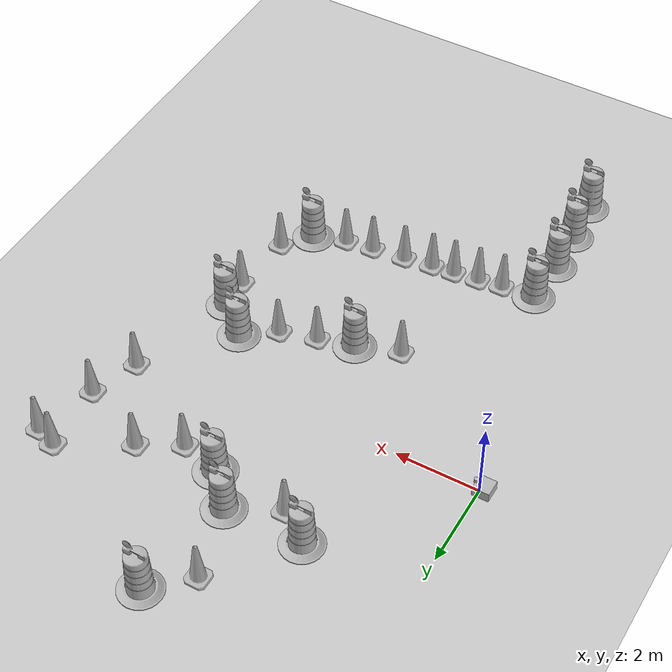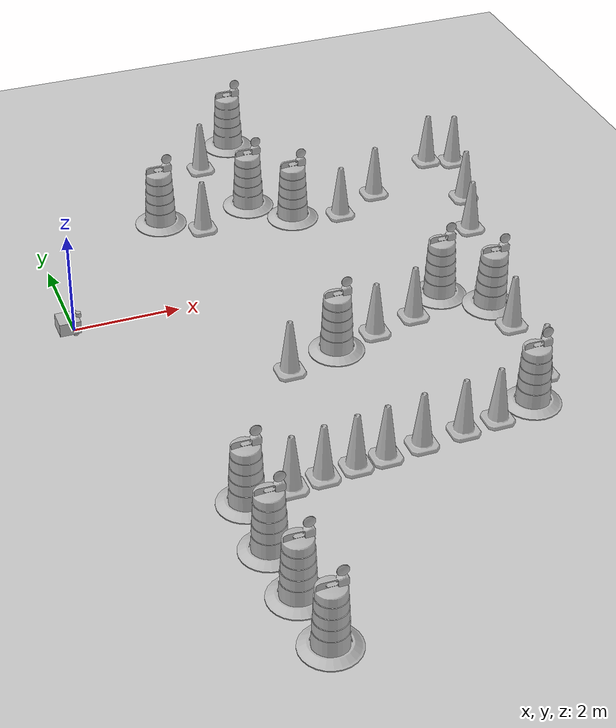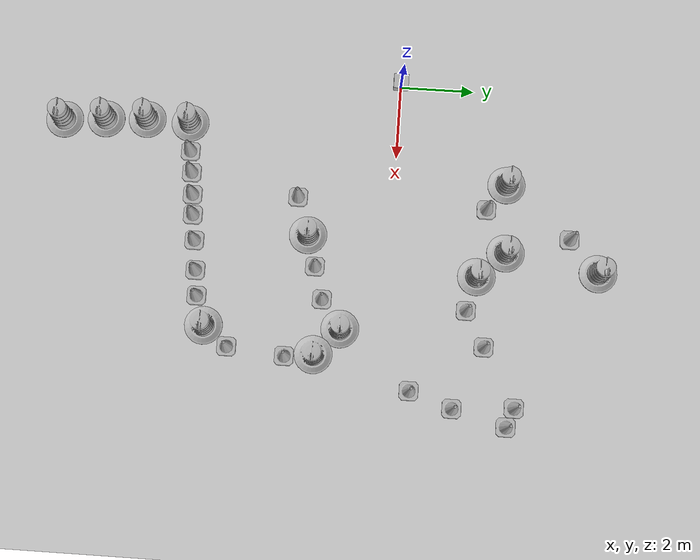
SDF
<sdf version="1.7">
 <world name="default">
  <light name="sun" type="directional">
   <pose>0 0 10 0 -0 0</pose>
   <diffuse>0.8 0.8 0.8 1</diffuse>
   <specular>0.2 0.2 0.2 1</specular>
   <attenuation>
    <range>1000</range>
    <constant>0.9</constant>
    <linear>0.01</linear>
    <quadratic>0.001</quadratic>
   </attenuation>
   <direction>-0.5 0.1 -0.9</direction>
   <spot><inner_angle>0</inner_angle><outer_angle>0</outer_angle><falloff>0</falloff></spot>
  </light>
  <model name="ground_plane">
   <static>1</static>
   <link name="link">
    <collision name="collision">
     <geometry><plane><normal>0 0 1</normal><size>100 100</size></plane></geometry>
     <surface>
      <contact><collide_bitmask>65535</collide_bitmask></contact>
      <friction><ode><mu>100</mu><mu2>50</mu2></ode></friction>
     </surface>
    </collision>
    <visual name="visual">
     <cast_shadows>0</cast_shadows>
     <geometry><plane><normal>0 0 1</normal><size>100 100</size></plane></geometry>
     <material>
      <script><uri>file://media/materials/scripts/gazebo.material</uri><name>Gazebo/Grey</name></script>
     </material>
    </visual>
   </link>
  </model>
  <gravity>0 0 -9.8</gravity>
  <magnetic_field>6e-06 2.3e-05 -4.2e-05</magnetic_field>
  <atmosphere type="adiabatic"/>
  <physics type="ode">
   <max_step_size>0.001</max_step_size>
   <real_time_factor>1</real_time_factor>
   <real_time_update_rate>1000</real_time_update_rate>
  </physics>
  <scene><ambient>0.4 0.4 0.4 1</ambient><background>0.7 0.7 0.7 1</background><shadows>1</shadows></scene>
  <audio><device>default</device></audio>
  <spherical_coordinates>
   <surface_model>EARTH_WGS84</surface_model>
   <latitude_deg>0</latitude_deg>
   <longitude_deg>0</longitude_deg>
   <elevation>0</elevation>
   <heading_deg>0</heading_deg>
  </spherical_coordinates>
  <model name="my_bot">
   <link name="base_link">
    <inertial>
     <pose>-0.078571 0 0.127857 0 -0 0</pose>
     <mass>1.4</mass>
     <inertia>
      <ixx>0.0263519</ixx>
      <ixy>0</ixy>
      <ixz>-0.00696429</ixz>
      <iyy>0.034209</iyy>
      <iyz>0</iyz>
      <izz>0.0349738</izz>
     </inertia>
    </inertial>
    <collision name="base_link_fixed_joint_lump__chassis_collision">
     <pose>-0.1 0 0.125 0 -0 0</pose>
     <geometry><box><size>0.4 0.4 0.25</size></box></geometry>
    </collision>
    <collision name="base_link_fixed_joint_lump__caster_wheel_collision_1">
     <pose>-0.15 0 0 0 -0 0</pose>
     <geometry><sphere><radius>0.05</radius></sphere></geometry>
     <surface><friction><ode><mu>0.001</mu><mu2>0.001</mu2></ode></friction></surface>
    </collision>
    <collision name="base_link_fixed_joint_lump__laser_link_collision_2">
     <pose>0.1 0 0.27 0 -0 0</pose>
     <geometry><cylinder><length>0.1</length><radius>0.05</radius></cylinder></geometry>
    </collision>
    <visual name="base_link_fixed_joint_lump__chassis_visual">
     <pose>-0.1 0 0.125 0 -0 0</pose>
     <geometry><box><size>0.4 0.4 0.25</size></box></geometry>
     <material>
      <script><name>ambient</name><uri>file://media/materials/scripts/gazebo.material</uri></script>
     </material>
    </visual>
    <visual name="base_link_fixed_joint_lump__camera_link_visual_1">
     <pose>-0.1 0 0.04 0 -0 0</pose>
     <geometry><box><size>0.05 0.1 0.1</size></box></geometry>
     <material>
      <script><name>Gazebo/Red</name><uri>file://media/materials/scripts/gazebo.material</uri></script>
     </material>
    </visual>
    <visual name="base_link_fixed_joint_lump__caster_wheel_visual_2">
     <pose>-0.15 0 0 0 -0 0</pose>
     <geometry><sphere><radius>0.05</radius></sphere></geometry>
     <material>
      <script><name>ambient</name><uri>file://media/materials/scripts/gazebo.material</uri></script>
     </material>
    </visual>
    <visual name="base_link_fixed_joint_lump__laser_link_visual_3">
     <pose>0.1 0 0.27 0 -0 0</pose>
     <geometry><cylinder><length>0.1</length><radius>0.05</radius></cylinder></geometry>
    </visual>
    <sensor name="camera" type="camera">
     <visualize>1</visualize>
     <update_rate>10</update_rate>
     <camera>
      <horizontal_fov>1.047</horizontal_fov>
      <image><width>640</width><height>480</height><format>R8G8B8</format></image>
      <clip><near>0.1</near><far>100</far></clip>
     </camera>
     <plugin name="camera_controller" filename="libgazebo_ros_camera.so">
      <frame_name>camera_link_optical</frame_name>
     </plugin>
     <pose>-0.1 0 0.04 0 -0 0</pose>
    </sensor>
    <sensor name="laser" type="ray">
     <visualize>0</visualize>
     <update_rate>10</update_rate>
     <ray>
      <scan>
       <horizontal>
        <samples>360</samples>
        <resolution>1</resolution>
        <min_angle>-3.14</min_angle>
        <max_angle>3.14</max_angle>
       </horizontal>
       <vertical><samples>1</samples><min_angle>0</min_angle><max_angle>0</max_angle></vertical>
      </scan>
      <range><min>0.3</min><max>12</max><resolution>0.01</resolution></range>
     </ray>
     <plugin name="laser_controller" filename="libgazebo_ros_ray_sensor.so">
      <ros><remapping>scan:=scan</remapping></ros>
      <frame_name>laser_link</frame_name>
     </plugin>
     <pose>0.1 0 0.27 0 -0 0</pose>
    </sensor>
   </link>
   <joint name="left_wheel_joint" type="revolute">
    <pose relative_to="base_link">0 0.175 0 -1.5708 0 0</pose>
    <parent>base_link</parent>
    <child>left_wheel</child>
    <axis>
     <xyz>0 0 -1</xyz>
     <limit><lower>-1e+16</lower><upper>1e+16</upper></limit>
     <dynamics><spring_reference>0</spring_reference><spring_stiffness>0</spring_stiffness></dynamics>
    </axis>
   </joint>
   <link name="left_wheel">
    <pose relative_to="left_wheel_joint">0 0 0 0 -0 0</pose>
    <inertial>
     <mass>0.5</mass>
     <inertia><ixx>0.00035</ixx><ixy>0</ixy><ixz>0</ixz><iyy>0.00035</iyy><iyz>0</iyz><izz>0.000625</izz></inertia>
    </inertial>
    <collision name="left_wheel_collision">
     <geometry><cylinder><length>0.03</length><radius>0.05</radius></cylinder></geometry>
    </collision>
    <visual name="left_wheel_visual">
     <geometry><cylinder><length>0.03</length><radius>0.05</radius></cylinder></geometry>
     <material>
      <script><name>ambient</name><uri>file://media/materials/scripts/gazebo.material</uri></script>
     </material>
    </visual>
   </link>
   <joint name="right_wheel_joint" type="revolute">
    <pose relative_to="base_link">0 -0.175 0 1.5708 -0 0</pose>
    <parent>base_link</parent>
    <child>right_wheel</child>
    <axis>
     <xyz>0 0 -1</xyz>
     <limit><lower>-1e+16</lower><upper>1e+16</upper></limit>
     <dynamics><spring_reference>0</spring_reference><spring_stiffness>0</spring_stiffness></dynamics>
    </axis>
   </joint>
   <link name="right_wheel">
    <pose relative_to="right_wheel_joint">0 0 0 0 -0 0</pose>
    <inertial>
     <mass>0.5</mass>
     <inertia><ixx>0.00035</ixx><ixy>0</ixy><ixz>0</ixz><iyy>0.00035</iyy><iyz>0</iyz><izz>0.000625</izz></inertia>
    </inertial>
    <collision name="right_wheel_collision">
     <geometry><cylinder><length>0.03</length><radius>0.05</radius></cylinder></geometry>
    </collision>
    <visual name="right_wheel_visual">
     <geometry><cylinder><length>0.03</length><radius>0.05</radius></cylinder></geometry>
     <material>
      <script><name>ambient</name><uri>file://media/materials/scripts/gazebo.material</uri></script>
     </material>
    </visual>
   </link>
   <static>0</static>
   <plugin name="diff_drive" filename="libgazebo_ros_diff_drive.so">
    <left_joint>left_wheel_joint</left_joint>
    <right_joint>right_wheel_joint</right_joint>
    <wheel_separation>0.4</wheel_separation>
    <wheel_diameter>0.1</wheel_diameter>
    <max_wheel_torque>200</max_wheel_torque>
    <max_wheel_acceleration>15</max_wheel_acceleration>
    <odometry_frame>odom</odometry_frame>
    <robot_base_frame>base_link</robot_base_frame>
    <publish_odom>1</publish_odom>
    <publish_odom_tf>1</publish_odom_tf>
    <publish_wheel_tf>1</publish_wheel_tf>
   </plugin>
   <pose>-0.006087 0.0001 0.05 0 -7e-06 -0.00196</pose>
  </model>
  <model name="Construction Barrel">
   <link name="link">
    <inertial>
     <pose>0 0 0.4 0 -0 0</pose>
     <mass>500</mass>
     <inertia><ixx>51.2096</ixx><iyy>51.2096</iyy><izz>25</izz><ixy>0</ixy><ixz>0</ixz><iyz>0</iyz></inertia>
    </inertial>
    <collision name="collision">
     <geometry><mesh><uri>model://construction_barrel/meshes/construction_barrel.dae</uri></mesh></geometry>
    </collision>
    <visual name="visual">
     <geometry><mesh><uri>model://construction_barrel/meshes/construction_barrel.dae</uri></mesh></geometry>
    </visual>
   </link>
   <pose>5.10254 2.32406 -0 0 -0 0.006288</pose>
  </model>
  <model name="Construction Barrel_0">
   <link name="link">
    <inertial>
     <pose>0 0 0.4 0 -0 0</pose>
     <mass>500</mass>
     <inertia><ixx>51.2096</ixx><iyy>51.2096</iyy><izz>25</izz><ixy>0</ixy><ixz>0</ixz><iyz>0</iyz></inertia>
    </inertial>
    <collision name="collision">
     <geometry><mesh><uri>model://construction_barrel/meshes/construction_barrel.dae</uri></mesh></geometry>
    </collision>
    <visual name="visual">
     <geometry><mesh><uri>model://construction_barrel/meshes/construction_barrel.dae</uri></mesh></geometry>
    </visual>
   </link>
   <pose>4.411 3.06948 -2e-06 1e-06 8e-06 -0.007578</pose>
  </model>
  <model name="Construction Barrel_1">
   <link name="link">
    <inertial>
     <pose>0 0 0.4 0 -0 0</pose>
     <mass>500</mass>
     <inertia><ixx>51.2096</ixx><iyy>51.2096</iyy><izz>25</izz><ixy>0</ixy><ixz>0</ixz><iyz>0</iyz></inertia>
    </inertial>
    <collision name="collision">
     <geometry><mesh><uri>model://construction_barrel/meshes/construction_barrel.dae</uri></mesh></geometry>
    </collision>
    <visual name="visual">
     <geometry><mesh><uri>model://construction_barrel/meshes/construction_barrel.dae</uri></mesh></geometry>
    </visual>
   </link>
   <pose>4.80146 5.55857 1e-06 3e-06 2e-06 -4.2e-05</pose>
  </model>
  <model name="Construction Barrel_2">
   <link name="link">
    <inertial>
     <pose>0 0 0.4 0 -0 0</pose>
     <mass>500</mass>
     <inertia><ixx>51.2096</ixx><iyy>51.2096</iyy><izz>25</izz><ixy>0</ixy><ixz>0</ixz><iyz>0</iyz></inertia>
    </inertial>
    <collision name="collision">
     <geometry><mesh><uri>model://construction_barrel/meshes/construction_barrel.dae</uri></mesh></geometry>
    </collision>
    <visual name="visual">
     <geometry><mesh><uri>model://construction_barrel/meshes/construction_barrel.dae</uri></mesh></geometry>
    </visual>
   </link>
   <pose>4.27556 -2.23762 1e-06 3e-06 2e-06 -4e-05</pose>
  </model>
  <model name="Construction Cone">
   <link name="link">
    <collision name="collision">
     <geometry>
      <mesh><scale>10 10 10</scale><uri>model://construction_cone/meshes/construction_cone.dae</uri></mesh>
     </geometry>
    </collision>
    <visual name="visual">
     <geometry>
      <mesh><scale>10 10 10</scale><uri>model://construction_cone/meshes/construction_cone.dae</uri></mesh>
     </geometry>
    </visual>
    <inertial>
     <inertia><ixx>1</ixx><ixy>0</ixy><ixz>0</ixz><iyy>1</iyy><iyz>0</iyz><izz>1</izz></inertia>
     <mass>1</mass>
    </inertial>
   </link>
   <pose>3.25957 -2.5756 -0 0 -0 0</pose>
  </model>
  <model name="Construction Cone_0">
   <link name="link">
    <collision name="collision">
     <geometry>
      <mesh><scale>10 10 10</scale><uri>model://construction_cone/meshes/construction_cone.dae</uri></mesh>
     </geometry>
    </collision>
    <visual name="visual">
     <geometry>
      <mesh><scale>10 10 10</scale><uri>model://construction_cone/meshes/construction_cone.dae</uri></mesh>
     </geometry>
    </visual>
    <inertial>
     <inertia><ixx>1</ixx><ixy>0</ixy><ixz>0</ixz><iyy>1</iyy><iyz>0</iyz><izz>1</izz></inertia>
     <mass>1</mass>
    </inertial>
   </link>
   <pose>6.97666 2.60348 -4e-06 3e-06 -0 0</pose>
  </model>
  <model name="Construction Cone_1">
   <link name="link">
    <collision name="collision">
     <geometry>
      <mesh><scale>10 10 10</scale><uri>model://construction_cone/meshes/construction_cone.dae</uri></mesh>
     </geometry>
    </collision>
    <visual name="visual">
     <geometry>
      <mesh><scale>10 10 10</scale><uri>model://construction_cone/meshes/construction_cone.dae</uri></mesh>
     </geometry>
    </visual>
    <inertial>
     <inertia><ixx>1</ixx><ixy>0</ixy><ixz>0</ixz><iyy>1</iyy><iyz>0</iyz><izz>1</izz></inertia>
     <mass>1</mass>
    </inertial>
   </link>
   <pose>9.03524 3.27529 -1e-05 0 -0 0</pose>
  </model>
  <model name="Construction Cone_2">
   <link name="link">
    <collision name="collision">
     <geometry>
      <mesh><scale>10 10 10</scale><uri>model://construction_cone/meshes/construction_cone.dae</uri></mesh>
     </geometry>
    </collision>
    <visual name="visual">
     <geometry>
      <mesh><scale>10 10 10</scale><uri>model://construction_cone/meshes/construction_cone.dae</uri></mesh>
     </geometry>
    </visual>
    <inertial>
     <inertia><ixx>1</ixx><ixy>0</ixy><ixz>0</ixz><iyy>1</iyy><iyz>0</iyz><izz>1</izz></inertia>
     <mass>1</mass>
    </inertial>
   </link>
   <pose>8.26043 0.69307 -0 0 -0 0</pose>
  </model>
  <model name="Construction Cone_3">
   <link name="link">
    <collision name="collision">
     <geometry>
      <mesh><scale>10 10 10</scale><uri>model://construction_cone/meshes/construction_cone.dae</uri></mesh>
     </geometry>
    </collision>
    <visual name="visual">
     <geometry>
      <mesh><scale>10 10 10</scale><uri>model://construction_cone/meshes/construction_cone.dae</uri></mesh>
     </geometry>
    </visual>
    <inertial>
     <inertia><ixx>1</ixx><ixy>0</ixy><ixz>0</ixz><iyy>1</iyy><iyz>0</iyz><izz>1</izz></inertia>
     <mass>1</mass>
    </inertial>
   </link>
   <pose>8.64823 1.83954 -0 0 -1e-06 0</pose>
  </model>
  <model name="Construction Cone_4">
   <link name="link">
    <collision name="collision">
     <geometry>
      <mesh><scale>10 10 10</scale><uri>model://construction_cone/meshes/construction_cone.dae</uri></mesh>
     </geometry>
    </collision>
    <visual name="visual">
     <geometry>
      <mesh><scale>10 10 10</scale><uri>model://construction_cone/meshes/construction_cone.dae</uri></mesh>
     </geometry>
    </visual>
    <inertial>
     <inertia><ixx>1</ixx><ixy>0</ixy><ixz>0</ixz><iyy>1</iyy><iyz>0</iyz><izz>1</izz></inertia>
     <mass>1</mass>
    </inertial>
   </link>
   <pose>8.52893 3.46942 -1e-05 0 -0 0</pose>
  </model>
  <model name="Construction Cone_5">
   <link name="link">
    <collision name="collision">
     <geometry>
      <mesh><scale>10 10 10</scale><uri>model://construction_cone/meshes/construction_cone.dae</uri></mesh>
     </geometry>
    </collision>
    <visual name="visual">
     <geometry>
      <mesh><scale>10 10 10</scale><uri>model://construction_cone/meshes/construction_cone.dae</uri></mesh>
     </geometry>
    </visual>
    <inertial>
     <inertia><ixx>1</ixx><ixy>0</ixy><ixz>0</ixz><iyy>1</iyy><iyz>0</iyz><izz>1</izz></inertia>
     <mass>1</mass>
    </inertial>
   </link>
   <pose>3.26717 2.50073 -0 0 -0 0</pose>
  </model>
  <model name="Construction Cone_6">
   <link name="link">
    <collision name="collision">
     <geometry>
      <mesh><scale>10 10 10</scale><uri>model://construction_cone/meshes/construction_cone.dae</uri></mesh>
     </geometry>
    </collision>
    <visual name="visual">
     <geometry>
      <mesh><scale>10 10 10</scale><uri>model://construction_cone/meshes/construction_cone.dae</uri></mesh>
     </geometry>
    </visual>
    <inertial>
     <inertia><ixx>1</ixx><ixy>0</ixy><ixz>0</ixz><iyy>1</iyy><iyz>0</iyz><izz>1</izz></inertia>
     <mass>1</mass>
    </inertial>
   </link>
   <pose>3.93993 4.7651 -0 0 -0 0</pose>
  </model>
  <model name="Construction Barrel_3">
   <link name="link">
    <inertial>
     <pose>0 0 0.4 0 -0 0</pose>
     <mass>500</mass>
     <inertia><ixx>51.2096</ixx><iyy>51.2096</iyy><izz>25</izz><ixy>0</ixy><ixz>0</ixz><iyz>0</iyz></inertia>
    </inertial>
    <collision name="collision">
     <geometry><mesh><uri>model://construction_barrel/meshes/construction_barrel.dae</uri></mesh></geometry>
    </collision>
    <visual name="visual">
     <geometry><mesh><uri>model://construction_barrel/meshes/construction_barrel.dae</uri></mesh></geometry>
    </visual>
   </link>
   <pose>6.7446 -1.21818 -1e-06 1e-06 2e-06 0.006492</pose>
  </model>
  <model name="Construction Barrel_4">
   <link name="link">
    <inertial>
     <pose>0 0 0.4 0 -0 0</pose>
     <mass>500</mass>
     <inertia><ixx>51.2096</ixx><iyy>51.2096</iyy><izz>25</izz><ixy>0</ixy><ixz>0</ixz><iyz>0</iyz></inertia>
    </inertial>
    <collision name="collision">
     <geometry><mesh><uri>model://construction_barrel/meshes/construction_barrel.dae</uri></mesh></geometry>
    </collision>
    <visual name="visual">
     <geometry><mesh><uri>model://construction_barrel/meshes/construction_barrel.dae</uri></mesh></geometry>
    </visual>
   </link>
   <pose>2.54755 3.01321 1e-06 3e-06 2e-06 -2.8e-05</pose>
  </model>
  <model name="Construction Cone_7">
   <link name="link">
    <collision name="collision">
     <geometry>
      <mesh><scale>10 10 10</scale><uri>model://construction_cone/meshes/construction_cone.dae</uri></mesh>
     </geometry>
    </collision>
    <visual name="visual">
     <geometry>
      <mesh><scale>10 10 10</scale><uri>model://construction_cone/meshes/construction_cone.dae</uri></mesh>
     </geometry>
    </visual>
    <inertial>
     <inertia><ixx>1</ixx><ixy>0</ixy><ixz>0</ixz><iyy>1</iyy><iyz>0</iyz><izz>1</izz></inertia>
     <mass>1</mass>
    </inertial>
   </link>
   <pose>6.03707 2.08697 -0 0 -1e-06 0</pose>
  </model>
  <model name="Construction Cone_8">
   <link name="link">
    <collision name="collision">
     <geometry>
      <mesh><scale>10 10 10</scale><uri>model://construction_cone/meshes/construction_cone.dae</uri></mesh>
     </geometry>
    </collision>
    <visual name="visual">
     <geometry>
      <mesh><scale>10 10 10</scale><uri>model://construction_cone/meshes/construction_cone.dae</uri></mesh>
     </geometry>
    </visual>
    <inertial>
     <inertia><ixx>1</ixx><ixy>0</ixy><ixz>0</ixz><iyy>1</iyy><iyz>0</iyz><izz>1</izz></inertia>
     <mass>1</mass>
    </inertial>
   </link>
   <pose>5.11898 -1.99431 -0 0 -0 0</pose>
  </model>
  <model name="Construction Cone_9">
   <link name="link">
    <collision name="collision">
     <geometry>
      <mesh><scale>10 10 10</scale><uri>model://construction_cone/meshes/construction_cone.dae</uri></mesh>
     </geometry>
    </collision>
    <visual name="visual">
     <geometry>
      <mesh><scale>10 10 10</scale><uri>model://construction_cone/meshes/construction_cone.dae</uri></mesh>
     </geometry>
    </visual>
    <inertial>
     <inertia><ixx>1</ixx><ixy>0</ixy><ixz>0</ixz><iyy>1</iyy><iyz>0</iyz><izz>1</izz></inertia>
     <mass>1</mass>
    </inertial>
   </link>
   <pose>5.99027 -1.74783 -0 0 -0 0</pose>
  </model>
  <model name="Construction Barrel_5">
   <link name="link">
    <inertial>
     <pose>0 0 0.4 0 -0 0</pose>
     <mass>500</mass>
     <inertia><ixx>51.2096</ixx><iyy>51.2096</iyy><izz>25</izz><ixy>0</ixy><ixz>0</ixz><iyz>0</iyz></inertia>
    </inertial>
    <collision name="collision">
     <geometry><mesh><uri>model://construction_barrel/meshes/construction_barrel.dae</uri></mesh></geometry>
    </collision>
    <visual name="visual">
     <geometry><mesh><uri>model://construction_barrel/meshes/construction_barrel.dae</uri></mesh></geometry>
    </visual>
   </link>
   <pose>1.39802 -5.65502 1e-06 3e-06 2e-06 -2.3e-05</pose>
  </model>
  <model name="Construction Barrel_6">
   <link name="link">
    <inertial>
     <pose>0 0 0.4 0 -0 0</pose>
     <mass>500</mass>
     <inertia><ixx>51.2096</ixx><iyy>51.2096</iyy><izz>25</izz><ixy>0</ixy><ixz>0</ixz><iyz>0</iyz></inertia>
    </inertial>
    <collision name="collision">
     <geometry><mesh><uri>model://construction_barrel/meshes/construction_barrel.dae</uri></mesh></geometry>
    </collision>
    <visual name="visual">
     <geometry><mesh><uri>model://construction_barrel/meshes/construction_barrel.dae</uri></mesh></geometry>
    </visual>
   </link>
   <pose>1.37094 -6.83061 1e-06 3e-06 2e-06 -2.2e-05</pose>
  </model>
  <model name="Construction Barrel_7">
   <link name="link">
    <inertial>
     <pose>0 0 0.4 0 -0 0</pose>
     <mass>500</mass>
     <inertia><ixx>51.2096</ixx><iyy>51.2096</iyy><izz>25</izz><ixy>0</ixy><ixz>0</ixz><iyz>0</iyz></inertia>
    </inertial>
    <collision name="collision">
     <geometry><mesh><uri>model://construction_barrel/meshes/construction_barrel.dae</uri></mesh></geometry>
    </collision>
    <visual name="visual">
     <geometry><mesh><uri>model://construction_barrel/meshes/construction_barrel.dae</uri></mesh></geometry>
    </visual>
   </link>
   <pose>1.43191 -7.95039 1e-06 3e-06 2e-06 -2.1e-05</pose>
  </model>
  <model name="Construction Barrel_8">
   <link name="link">
    <inertial>
     <pose>0 0 0.4 0 -0 0</pose>
     <mass>500</mass>
     <inertia><ixx>51.2096</ixx><iyy>51.2096</iyy><izz>25</izz><ixy>0</ixy><ixz>0</ixz><iyz>0</iyz></inertia>
    </inertial>
    <collision name="collision">
     <geometry><mesh><uri>model://construction_barrel/meshes/construction_barrel.dae</uri></mesh></geometry>
    </collision>
    <visual name="visual">
     <geometry><mesh><uri>model://construction_barrel/meshes/construction_barrel.dae</uri></mesh></geometry>
    </visual>
   </link>
   <pose>1.51882 -9.07821 1e-06 3e-06 2e-06 -2e-05</pose>
  </model>
  <model name="Construction Cone_10">
   <link name="link">
    <collision name="collision">
     <geometry>
      <mesh><scale>10 10 10</scale><uri>model://construction_cone/meshes/construction_cone.dae</uri></mesh>
     </geometry>
    </collision>
    <visual name="visual">
     <geometry>
      <mesh><scale>10 10 10</scale><uri>model://construction_cone/meshes/construction_cone.dae</uri></mesh>
     </geometry>
    </visual>
    <inertial>
     <inertia><ixx>1</ixx><ixy>0</ixy><ixz>0</ixz><iyy>1</iyy><iyz>0</iyz><izz>1</izz></inertia>
     <mass>1</mass>
    </inertial>
   </link>
   <pose>2.19218 -5.57583 -0 0 -0 0</pose>
  </model>
  <model name="Construction Cone_11">
   <link name="link">
    <collision name="collision">
     <geometry>
      <mesh><scale>10 10 10</scale><uri>model://construction_cone/meshes/construction_cone.dae</uri></mesh>
     </geometry>
    </collision>
    <visual name="visual">
     <geometry>
      <mesh><scale>10 10 10</scale><uri>model://construction_cone/meshes/construction_cone.dae</uri></mesh>
     </geometry>
    </visual>
    <inertial>
     <inertia><ixx>1</ixx><ixy>0</ixy><ixz>0</ixz><iyy>1</iyy><iyz>0</iyz><izz>1</izz></inertia>
     <mass>1</mass>
    </inertial>
   </link>
   <pose>2.7773 -5.4946 0 -0 -0 -0</pose>
  </model>
  <model name="Construction Cone_12">
   <link name="link">
    <collision name="collision">
     <geometry>
      <mesh><scale>10 10 10</scale><uri>model://construction_cone/meshes/construction_cone.dae</uri></mesh>
     </geometry>
    </collision>
    <visual name="visual">
     <geometry>
      <mesh><scale>10 10 10</scale><uri>model://construction_cone/meshes/construction_cone.dae</uri></mesh>
     </geometry>
    </visual>
    <inertial>
     <inertia><ixx>1</ixx><ixy>0</ixy><ixz>0</ixz><iyy>1</iyy><iyz>0</iyz><izz>1</izz></inertia>
     <mass>1</mass>
    </inertial>
   </link>
   <pose>3.38268 -5.42066 -0 0 -0 0</pose>
  </model>
  <model name="Construction Cone_13">
   <link name="link">
    <collision name="collision">
     <geometry>
      <mesh><scale>10 10 10</scale><uri>model://construction_cone/meshes/construction_cone.dae</uri></mesh>
     </geometry>
    </collision>
    <visual name="visual">
     <geometry>
      <mesh><scale>10 10 10</scale><uri>model://construction_cone/meshes/construction_cone.dae</uri></mesh>
     </geometry>
    </visual>
    <inertial>
     <inertia><ixx>1</ixx><ixy>0</ixy><ixz>0</ixz><iyy>1</iyy><iyz>0</iyz><izz>1</izz></inertia>
     <mass>1</mass>
    </inertial>
   </link>
   <pose>3.93569 -5.36614 -0 0 -0 0</pose>
  </model>
  <model name="Construction Cone_14">
   <link name="link">
    <collision name="collision">
     <geometry>
      <mesh><scale>10 10 10</scale><uri>model://construction_cone/meshes/construction_cone.dae</uri></mesh>
     </geometry>
    </collision>
    <visual name="visual">
     <geometry>
      <mesh><scale>10 10 10</scale><uri>model://construction_cone/meshes/construction_cone.dae</uri></mesh>
     </geometry>
    </visual>
    <inertial>
     <inertia><ixx>1</ixx><ixy>0</ixy><ixz>0</ixz><iyy>1</iyy><iyz>0</iyz><izz>1</izz></inertia>
     <mass>1</mass>
    </inertial>
   </link>
   <pose>4.6277 -5.26665 -0 0 -0 0</pose>
  </model>
  <model name="Construction Cone_15">
   <link name="link">
    <collision name="collision">
     <geometry>
      <mesh><scale>10 10 10</scale><uri>model://construction_cone/meshes/construction_cone.dae</uri></mesh>
     </geometry>
    </collision>
    <visual name="visual">
     <geometry>
      <mesh><scale>10 10 10</scale><uri>model://construction_cone/meshes/construction_cone.dae</uri></mesh>
     </geometry>
    </visual>
    <inertial>
     <inertia><ixx>1</ixx><ixy>0</ixy><ixz>0</ixz><iyy>1</iyy><iyz>0</iyz><izz>1</izz></inertia>
     <mass>1</mass>
    </inertial>
   </link>
   <pose>5.43341 -5.17006 -0 0 -0 0</pose>
  </model>
  <model name="Construction Cone_16">
   <link name="link">
    <collision name="collision">
     <geometry>
      <mesh><scale>10 10 10</scale><uri>model://construction_cone/meshes/construction_cone.dae</uri></mesh>
     </geometry>
    </collision>
    <visual name="visual">
     <geometry>
      <mesh><scale>10 10 10</scale><uri>model://construction_cone/meshes/construction_cone.dae</uri></mesh>
     </geometry>
    </visual>
    <inertial>
     <inertia><ixx>1</ixx><ixy>0</ixy><ixz>0</ixz><iyy>1</iyy><iyz>0</iyz><izz>1</izz></inertia>
     <mass>1</mass>
    </inertial>
   </link>
   <pose>6.11586 -5.08162 -0 0 -1e-06 0</pose>
  </model>
  <model name="Construction Barrel_9">
   <link name="link">
    <inertial>
     <pose>0 0 0.4 0 -0 0</pose>
     <mass>500</mass>
     <inertia><ixx>51.2096</ixx><iyy>51.2096</iyy><izz>25</izz><ixy>0</ixy><ixz>0</ixz><iyz>0</iyz></inertia>
    </inertial>
    <collision name="collision">
     <geometry><mesh><uri>model://construction_barrel/meshes/construction_barrel.dae</uri></mesh></geometry>
    </collision>
    <visual name="visual">
     <geometry><mesh><uri>model://construction_barrel/meshes/construction_barrel.dae</uri></mesh></geometry>
    </visual>
   </link>
   <pose>6.89345 -4.83402 -1e-06 3e-06 1e-05 -7e-06</pose>
  </model>
  <model name="Construction Barrel_10">
   <link name="link">
    <inertial>
     <pose>0 0 0.4 0 -0 0</pose>
     <mass>500</mass>
     <inertia><ixx>51.2096</ixx><iyy>51.2096</iyy><izz>25</izz><ixy>0</ixy><ixz>0</ixz><iyz>0</iyz></inertia>
    </inertial>
    <collision name="collision">
     <geometry><mesh><uri>model://construction_barrel/meshes/construction_barrel.dae</uri></mesh></geometry>
    </collision>
    <visual name="visual">
     <geometry><mesh><uri>model://construction_barrel/meshes/construction_barrel.dae</uri></mesh></geometry>
    </visual>
   </link>
   <pose>7.47138 -1.87806 0.015149 0.018361 0.02366 -0.031672</pose>
  </model>
  <model name="Construction Cone_17">
   <link name="link">
    <collision name="collision">
     <geometry>
      <mesh><scale>10 10 10</scale><uri>model://construction_cone/meshes/construction_cone.dae</uri></mesh>
     </geometry>
    </collision>
    <visual name="visual">
     <geometry>
      <mesh><scale>10 10 10</scale><uri>model://construction_cone/meshes/construction_cone.dae</uri></mesh>
     </geometry>
    </visual>
    <inertial>
     <inertia><ixx>1</ixx><ixy>0</ixy><ixz>0</ixz><iyy>1</iyy><iyz>0</iyz><izz>1</izz></inertia>
     <mass>1</mass>
    </inertial>
   </link>
   <pose>7.41302 -4.18124 -0 0 -0 0</pose>
  </model>
  <model name="Construction Cone_18">
   <link name="link">
    <collision name="collision">
     <geometry>
      <mesh><scale>10 10 10</scale><uri>model://construction_cone/meshes/construction_cone.dae</uri></mesh>
     </geometry>
    </collision>
    <visual name="visual">
     <geometry>
      <mesh><scale>10 10 10</scale><uri>model://construction_cone/meshes/construction_cone.dae</uri></mesh>
     </geometry>
    </visual>
    <inertial>
     <inertia><ixx>1</ixx><ixy>0</ixy><ixz>0</ixz><iyy>1</iyy><iyz>0</iyz><izz>1</izz></inertia>
     <mass>1</mass>
    </inertial>
   </link>
   <pose>7.56235 -2.64378 -0 0 -1e-06 0</pose>
  </model>
 </world>
</sdf>
